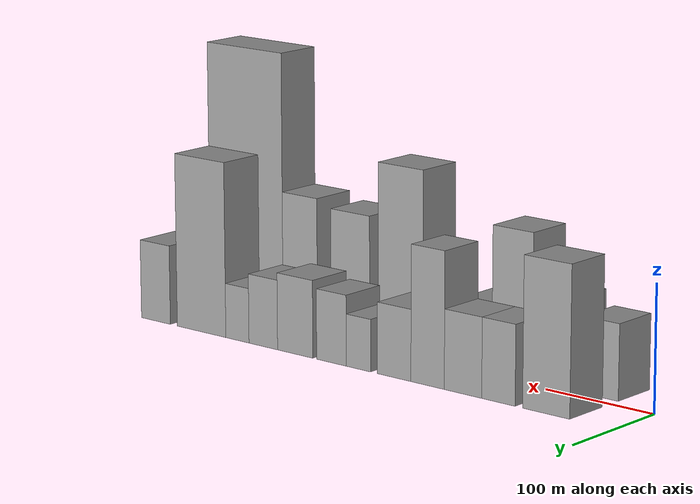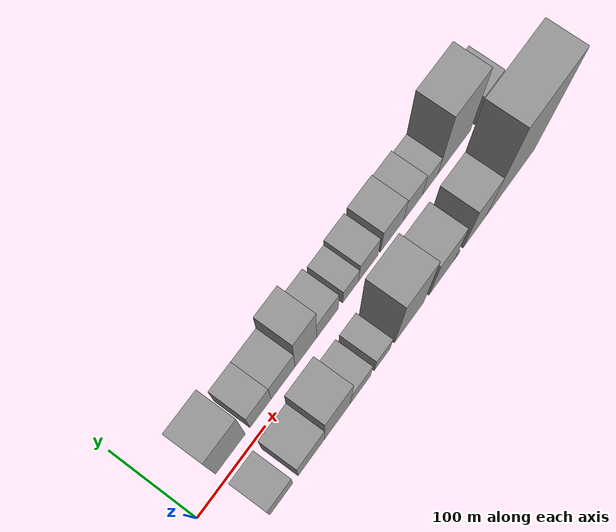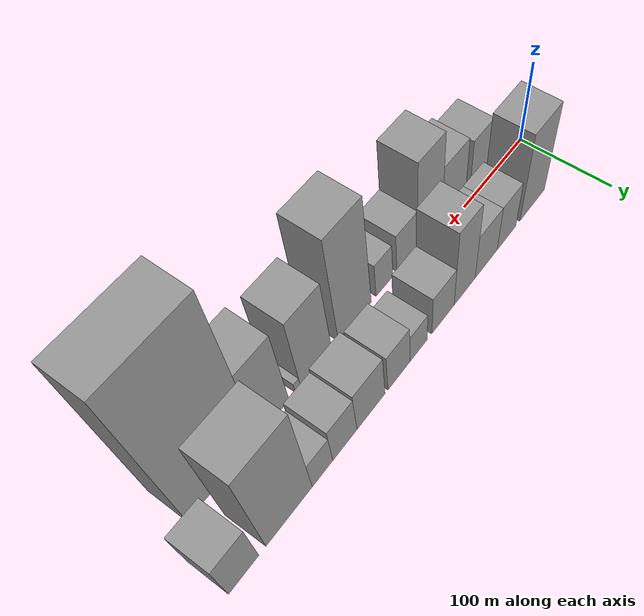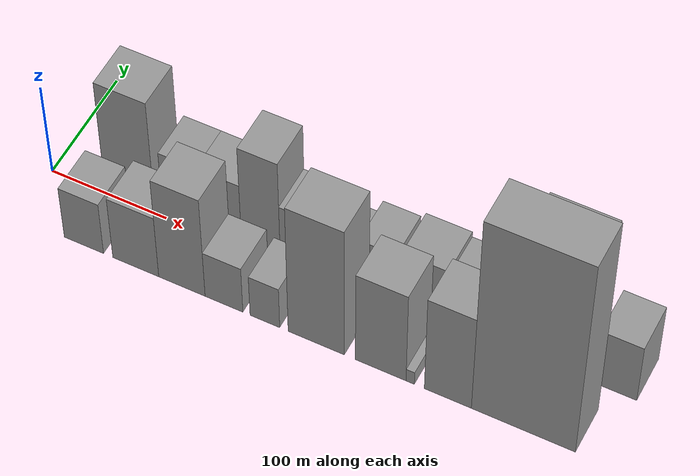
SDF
<sdf version="1.6">
 <world name="default">
  <scene>
   <sky><clouds><speed>12</speed></clouds></sky>
   <ambient>0.4 0.4 0.4 1</ambient>
   <background>0.7 0.7 0.7 1</background>
   <shadows>1</shadows>
  </scene>
  <gravity>0 0 -9.8066</gravity>
  <magnetic_field>6e-06 2.3e-05 -4.2e-05</magnetic_field>
  <physics default="0" name="default_physics" type="ode">
   <ode>
    <solver>
     <type>quick</type>
     <iters>10</iters>
     <sor>1.0</sor>
     <use_dynamic_moi_rescaling>0</use_dynamic_moi_rescaling>
    </solver>
    <constraints>
     <cfm>0</cfm>
     <erp>0.2</erp>
     <contact_max_correcting_vel>100</contact_max_correcting_vel>
     <contact_surface_layer>0.001</contact_surface_layer>
    </constraints>
   </ode>
   <max_step_size>0.004</max_step_size>
   <real_time_factor>1</real_time_factor>
   <real_time_update_rate>250</real_time_update_rate>
  </physics>
  <light name="sun" type="directional">
   <pose>0 0 10 0 0 0</pose>
   <diffuse>0.8 0.8 0.8 1</diffuse>
   <specular>0.2 0.2 0.2 1</specular>
   <attenuation>
    <range>1000</range>
    <constant>0.9</constant>
    <linear>0.01</linear>
    <quadratic>0.001</quadratic>
   </attenuation>
   <direction>-0.5 0.1 -0.9</direction>
  </light>
  <model name="building_1">
   <static>1</static>
   <pose>61.8488 30.0000 0 0.000000 0.000000 1.570796</pose>
   <link name="link">
    <pose>0 0 58.50 0 0 0</pose>
    <collision name="collision"><geometry><box><size>40.0000 43.6977 117.0000</size></box></geometry></collision>
    <visual name="visual">
     <cast_shadows>0</cast_shadows>
     <geometry><box><size>40.0000 43.6977 117.0000</size></box></geometry>
     <material>
      <script>
       <uri>model://grey_wall/materials/scripts</uri>
       <uri>model://grey_wall/materials/textures</uri>
       <name>vrc/grey_wall</name>
      </script>
     </material>
    </visual>
   </link>
  </model>
  <model name="building_2">
   <static>1</static>
   <pose>106.5754 30.0000 0 0.000000 0.000000 1.570796</pose>
   <link name="link">
    <pose>0 0 31.50 0 0 0</pose>
    <collision name="collision"><geometry><box><size>40.0000 31.7555 63.0000</size></box></geometry></collision>
    <visual name="visual">
     <cast_shadows>0</cast_shadows>
     <geometry><box><size>40.0000 31.7555 63.0000</size></box></geometry>
     <material>
      <script>
       <uri>model://grey_wall/materials/scripts</uri>
       <uri>model://grey_wall/materials/textures</uri>
       <name>vrc/grey_wall</name>
      </script>
     </material>
    </visual>
   </link>
  </model>
  <model name="building_3">
   <static>1</static>
   <pose>140.5686 30.0000 0 0.000000 0.000000 1.570796</pose>
   <link name="link">
    <pose>0 0 31.50 0 0 0</pose>
    <collision name="collision"><geometry><box><size>40.0000 36.2309 63.0000</size></box></geometry></collision>
    <visual name="visual">
     <cast_shadows>0</cast_shadows>
     <geometry><box><size>40.0000 36.2309 63.0000</size></box></geometry>
     <material>
      <script>
       <uri>model://grey_wall/materials/scripts</uri>
       <uri>model://grey_wall/materials/textures</uri>
       <name>vrc/grey_wall</name>
      </script>
     </material>
    </visual>
   </link>
  </model>
  <model name="building_4">
   <static>1</static>
   <pose>175.1720 30.0000 0 0.000000 0.000000 1.570796</pose>
   <link name="link">
    <pose>0 0 54.00 0 0 0</pose>
    <collision name="collision"><geometry><box><size>40.0000 32.9758 108.0000</size></box></geometry></collision>
    <visual name="visual">
     <cast_shadows>0</cast_shadows>
     <geometry><box><size>40.0000 32.9758 108.0000</size></box></geometry>
     <material>
      <script>
       <uri>model://grey_wall/materials/scripts</uri>
       <uri>model://grey_wall/materials/textures</uri>
       <name>vrc/grey_wall</name>
      </script>
     </material>
    </visual>
   </link>
  </model>
  <model name="building_5">
   <static>1</static>
   <pose>208.5088 30.0000 0 0.000000 0.000000 1.570796</pose>
   <link name="link">
    <pose>0 0 28.50 0 0 0</pose>
    <collision name="collision"><geometry><box><size>40.0000 33.6977 57.0000</size></box></geometry></collision>
    <visual name="visual">
     <cast_shadows>0</cast_shadows>
     <geometry><box><size>40.0000 33.6977 57.0000</size></box></geometry>
     <material>
      <script>
       <uri>model://grey_wall/materials/scripts</uri>
       <uri>model://grey_wall/materials/textures</uri>
       <name>vrc/grey_wall</name>
      </script>
     </material>
    </visual>
   </link>
  </model>
  <model name="building_6">
   <static>1</static>
   <pose>244.8640 30.0000 0 0.000000 0.000000 1.570796</pose>
   <link name="link">
    <pose>0 0 21.00 0 0 0</pose>
    <collision name="collision"><geometry><box><size>40.0000 25.0128 42.0000</size></box></geometry></collision>
    <visual name="visual">
     <cast_shadows>0</cast_shadows>
     <geometry><box><size>40.0000 25.0128 42.0000</size></box></geometry>
     <material>
      <script>
       <uri>model://grey_wall/materials/scripts</uri>
       <uri>model://grey_wall/materials/textures</uri>
       <name>vrc/grey_wall</name>
      </script>
     </material>
    </visual>
   </link>
  </model>
  <model name="building_7">
   <static>1</static>
   <pose>272.7892 30.0000 0 0.000000 0.000000 1.570796</pose>
   <link name="link">
    <pose>0 0 28.50 0 0 0</pose>
    <collision name="collision"><geometry><box><size>40.0000 30.8376 57.0000</size></box></geometry></collision>
    <visual name="visual">
     <cast_shadows>0</cast_shadows>
     <geometry><box><size>40.0000 30.8376 57.0000</size></box></geometry>
     <material>
      <script>
       <uri>model://grey_wall/materials/scripts</uri>
       <uri>model://grey_wall/materials/textures</uri>
       <name>vrc/grey_wall</name>
      </script>
     </material>
    </visual>
   </link>
  </model>
  <model name="building_8">
   <static>1</static>
   <pose>310.9772 30.0000 0 0.000000 0.000000 1.570796</pose>
   <link name="link">
    <pose>0 0 31.50 0 0 0</pose>
    <collision name="collision"><geometry><box><size>40.0000 37.5384 63.0000</size></box></geometry></collision>
    <visual name="visual">
     <cast_shadows>0</cast_shadows>
     <geometry><box><size>40.0000 37.5384 63.0000</size></box></geometry>
     <material>
      <script>
       <uri>model://grey_wall/materials/scripts</uri>
       <uri>model://grey_wall/materials/textures</uri>
       <name>vrc/grey_wall</name>
      </script>
     </material>
    </visual>
   </link>
  </model>
  <model name="building_9">
   <static>1</static>
   <pose>345.2372 30.0000 0 0.000000 0.000000 1.570796</pose>
   <link name="link">
    <pose>0 0 28.50 0 0 0</pose>
    <collision name="collision"><geometry><box><size>40.0000 30.9815 57.0000</size></box></geometry></collision>
    <visual name="visual">
     <cast_shadows>0</cast_shadows>
     <geometry><box><size>40.0000 30.9815 57.0000</size></box></geometry>
     <material>
      <script>
       <uri>model://grey_wall/materials/scripts</uri>
       <uri>model://grey_wall/materials/textures</uri>
       <name>vrc/grey_wall</name>
      </script>
     </material>
    </visual>
   </link>
  </model>
  <model name="building_10">
   <static>1</static>
   <pose>373.4800 30.0000 0 0.000000 0.000000 1.570796</pose>
   <link name="link">
    <pose>0 0 22.50 0 0 0</pose>
    <collision name="collision"><geometry><box><size>40.0000 25.5041 45.0000</size></box></geometry></collision>
    <visual name="visual">
     <cast_shadows>0</cast_shadows>
     <geometry><box><size>40.0000 25.5041 45.0000</size></box></geometry>
     <material>
      <script>
       <uri>model://grey_wall/materials/scripts</uri>
       <uri>model://grey_wall/materials/textures</uri>
       <name>vrc/grey_wall</name>
      </script>
     </material>
    </visual>
   </link>
  </model>
  <model name="building_11">
   <static>1</static>
   <pose>413.4992 30.0000 0 0.000000 0.000000 1.570796</pose>
   <link name="link">
    <pose>0 0 72.00 0 0 0</pose>
    <collision name="collision"><geometry><box><size>40.0000 54.5343 144.0000</size></box></geometry></collision>
    <visual name="visual">
     <cast_shadows>0</cast_shadows>
     <geometry><box><size>40.0000 54.5343 144.0000</size></box></geometry>
     <material>
      <script>
       <uri>model://grey_wall/materials/scripts</uri>
       <uri>model://grey_wall/materials/textures</uri>
       <name>vrc/grey_wall</name>
      </script>
     </material>
    </visual>
   </link>
  </model>
  <model name="building_12">
   <static>1</static>
   <pose>465.4071 30.0000 0 0.000000 0.000000 1.570796</pose>
   <link name="link">
    <pose>0 0 33.00 0 0 0</pose>
    <collision name="collision"><geometry><box><size>40.0000 33.2815 66.0000</size></box></geometry></collision>
    <visual name="visual">
     <cast_shadows>0</cast_shadows>
     <geometry><box><size>40.0000 33.2815 66.0000</size></box></geometry>
     <material>
      <script>
       <uri>model://grey_wall/materials/scripts</uri>
       <uri>model://grey_wall/materials/textures</uri>
       <name>vrc/grey_wall</name>
      </script>
     </material>
    </visual>
   </link>
  </model>
  <model name="building_13">
   <static>1</static>
   <pose>56.9562 -30.0000 0 0.000000 0.000000 1.570796</pose>
   <link name="link">
    <pose>0 0 30.00 0 0 0</pose>
    <collision name="collision"><geometry><box><size>40.0000 33.9124 60.0000</size></box></geometry></collision>
    <visual name="visual">
     <cast_shadows>0</cast_shadows>
     <geometry><box><size>40.0000 33.9124 60.0000</size></box></geometry>
     <material>
      <script>
       <uri>model://grey_wall/materials/scripts</uri>
       <uri>model://grey_wall/materials/textures</uri>
       <name>vrc/grey_wall</name>
      </script>
     </material>
    </visual>
   </link>
  </model>
  <model name="building_14">
   <static>1</static>
   <pose>101.5500 -30.0000 0 0.000000 0.000000 1.570796</pose>
   <link name="link">
    <pose>0 0 36.00 0 0 0</pose>
    <collision name="collision"><geometry><box><size>40.0000 39.2753 72.0000</size></box></geometry></collision>
    <visual name="visual">
     <cast_shadows>0</cast_shadows>
     <geometry><box><size>40.0000 39.2753 72.0000</size></box></geometry>
     <material>
      <script>
       <uri>model://grey_wall/materials/scripts</uri>
       <uri>model://grey_wall/materials/textures</uri>
       <name>vrc/grey_wall</name>
      </script>
     </material>
    </visual>
   </link>
  </model>
  <model name="building_15">
   <static>1</static>
   <pose>140.8429 -30.0000 0 0.000000 0.000000 1.570796</pose>
   <link name="link">
    <pose>0 0 58.50 0 0 0</pose>
    <collision name="collision"><geometry><box><size>40.0000 39.3104 117.0000</size></box></geometry></collision>
    <visual name="visual">
     <cast_shadows>0</cast_shadows>
     <geometry><box><size>40.0000 39.3104 117.0000</size></box></geometry>
     <material>
      <script>
       <uri>model://grey_wall/materials/scripts</uri>
       <uri>model://grey_wall/materials/textures</uri>
       <name>vrc/grey_wall</name>
      </script>
     </material>
    </visual>
   </link>
  </model>
  <model name="building_16">
   <static>1</static>
   <pose>176.3378 -30.0000 0 0.000000 0.000000 1.570796</pose>
   <link name="link">
    <pose>0 0 27.00 0 0 0</pose>
    <collision name="collision"><geometry><box><size>40.0000 31.6794 54.0000</size></box></geometry></collision>
    <visual name="visual">
     <cast_shadows>0</cast_shadows>
     <geometry><box><size>40.0000 31.6794 54.0000</size></box></geometry>
     <material>
      <script>
       <uri>model://grey_wall/materials/scripts</uri>
       <uri>model://grey_wall/materials/textures</uri>
       <name>vrc/grey_wall</name>
      </script>
     </material>
    </visual>
   </link>
  </model>
  <model name="building_17">
   <static>1</static>
   <pose>210.5148 -30.0000 0 0.000000 0.000000 1.570796</pose>
   <link name="link">
    <pose>0 0 24.00 0 0 0</pose>
    <collision name="collision"><geometry><box><size>40.0000 24.6745 48.0000</size></box></geometry></collision>
    <visual name="visual">
     <cast_shadows>0</cast_shadows>
     <geometry><box><size>40.0000 24.6745 48.0000</size></box></geometry>
     <material>
      <script>
       <uri>model://grey_wall/materials/scripts</uri>
       <uri>model://grey_wall/materials/textures</uri>
       <name>vrc/grey_wall</name>
      </script>
     </material>
    </visual>
   </link>
  </model>
  <model name="building_18">
   <static>1</static>
   <pose>252.9781 -30.0000 0 0.000000 0.000000 1.570796</pose>
   <link name="link">
    <pose>0 0 75.00 0 0 0</pose>
    <collision name="collision"><geometry><box><size>40.0000 46.2522 150.0000</size></box></geometry></collision>
    <visual name="visual">
     <cast_shadows>0</cast_shadows>
     <geometry><box><size>40.0000 46.2522 150.0000</size></box></geometry>
     <material>
      <script>
       <uri>model://grey_wall/materials/scripts</uri>
       <uri>model://grey_wall/materials/textures</uri>
       <name>vrc/grey_wall</name>
      </script>
     </material>
    </visual>
   </link>
  </model>
  <model name="building_19">
   <static>1</static>
   <pose>305.6555 -30.0000 0 0.000000 0.000000 1.570796</pose>
   <link name="link">
    <pose>0 0 52.50 0 0 0</pose>
    <collision name="collision"><geometry><box><size>40.0000 41.1027 105.0000</size></box></geometry></collision>
    <visual name="visual">
     <cast_shadows>0</cast_shadows>
     <geometry><box><size>40.0000 41.1027 105.0000</size></box></geometry>
     <material>
      <script>
       <uri>model://grey_wall/materials/scripts</uri>
       <uri>model://grey_wall/materials/textures</uri>
       <name>vrc/grey_wall</name>
      </script>
     </material>
    </visual>
   </link>
  </model>
  <model name="building_20">
   <static>1</static>
   <pose>329.5823 -30.0000 0 0.000000 0.000000 1.570796</pose>
   <link name="link">
    <pose>0 0 7.50 0 0 0</pose>
    <collision name="collision"><geometry><box><size>40.0000 6.7508 15.0000</size></box></geometry></collision>
    <visual name="visual">
     <cast_shadows>0</cast_shadows>
     <geometry><box><size>40.0000 6.7508 15.0000</size></box></geometry>
     <material>
      <script>
       <uri>model://grey_wall/materials/scripts</uri>
       <uri>model://grey_wall/materials/textures</uri>
       <name>vrc/grey_wall</name>
      </script>
     </material>
    </visual>
   </link>
  </model>
  <model name="building_21">
   <static>1</static>
   <pose>359.7637 -30.0000 0 0.000000 0.000000 1.570796</pose>
   <link name="link">
    <pose>0 0 55.50 0 0 0</pose>
    <collision name="collision"><geometry><box><size>40.0000 37.6119 111.0000</size></box></geometry></collision>
    <visual name="visual">
     <cast_shadows>0</cast_shadows>
     <geometry><box><size>40.0000 37.6119 111.0000</size></box></geometry>
     <material>
      <script>
       <uri>model://grey_wall/materials/scripts</uri>
       <uri>model://grey_wall/materials/textures</uri>
       <name>vrc/grey_wall</name>
      </script>
     </material>
    </visual>
   </link>
  </model>
  <model name="building_22">
   <static>1</static>
   <pose>419.5539 -30.0000 0 0.000000 0.000000 1.570796</pose>
   <link name="link">
    <pose>0 0 112.50 0 0 0</pose>
    <collision name="collision"><geometry><box><size>40.0000 81.9686 225.0000</size></box></geometry></collision>
    <visual name="visual">
     <cast_shadows>0</cast_shadows>
     <geometry><box><size>40.0000 81.9686 225.0000</size></box></geometry>
     <material>
      <script>
       <uri>model://grey_wall/materials/scripts</uri>
       <uri>model://grey_wall/materials/textures</uri>
       <name>vrc/grey_wall</name>
      </script>
     </material>
    </visual>
   </link>
  </model>
 </world>
</sdf>
